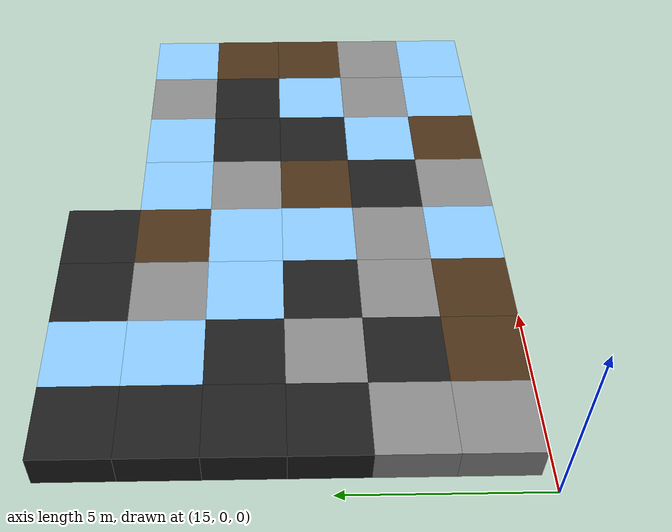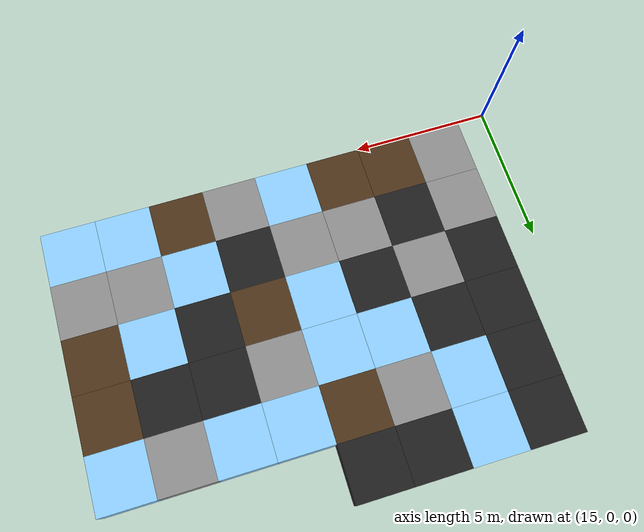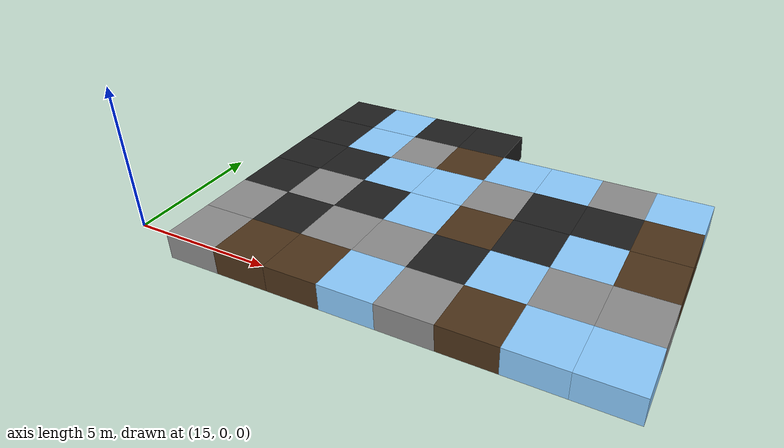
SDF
<sdf version="1.5">
 <world name="squares_example">
  <model name="tile_24_16">
   <static>true</static>
   <pose>17.000 1.000 -0.500 0 0 0</pose>
   <link name="link">
    <collision name="col">
     <geometry><box><size>2.0 2.0 1.0</size></box></geometry>
     <surface>
      <friction>
       <ode><mu>0.8</mu><mu2>0.3</mu2><fdir1>1 0 0</fdir1><slip1>0.0</slip1><slip2>0.0</slip2></ode>
       <torsional>
        <coefficient>0.03</coefficient>
        <use_patch_radius>false</use_patch_radius>
        <surface_radius>0.12</surface_radius>
        <ode><slip>0.0</slip></ode>
       </torsional>
      </friction>
      <bounce><restitution_coefficient>0.0</restitution_coefficient><threshold>0.1</threshold></bounce>
      <contact>
       <ode><kp>10000000000.0</kp><kd>10000000.0</kd><max_vel>0.01</max_vel><min_depth>0.0</min_depth></ode>
      </contact>
     </surface>
    </collision>
    <visual name="visual">
     <geometry><box><size>2.0 2.0 1.0</size></box></geometry>
     <material>
      <diffuse>0.55 0.55 0.55 1</diffuse>
      <ambient>0 0 0 0</ambient>
      <specular>0 0 0 1</specular>
      <emissive>0 0 0 1</emissive>
     </material>
    </visual>
   </link>
  </model>
  <model name="tile_25_16">
   <static>true</static>
   <pose>19.000 1.000 -0.500 0 0 0</pose>
   <link name="link">
    <collision name="col">
     <geometry><box><size>2.0 2.0 1.0</size></box></geometry>
     <surface>
      <friction>
       <ode><mu>0.6</mu><mu2>0.4</mu2><fdir1>1 0 0</fdir1><slip1>0.08</slip1><slip2>0.08</slip2></ode>
       <torsional>
        <coefficient>0.03</coefficient>
        <use_patch_radius>false</use_patch_radius>
        <surface_radius>0.12</surface_radius>
        <ode><slip>0.0</slip></ode>
       </torsional>
      </friction>
      <bounce><restitution_coefficient>0.0</restitution_coefficient><threshold>0.1</threshold></bounce>
      <contact>
       <ode><kp>1000000.0</kp><kd>10000.0</kd><max_vel>0.01</max_vel><min_depth>0.0</min_depth></ode>
      </contact>
     </surface>
    </collision>
    <visual name="visual">
     <geometry><box><size>2.0 2.0 1.0</size></box></geometry>
     <material>
      <diffuse>0.30 0.20 0.10 1</diffuse>
      <ambient>0 0 0 0</ambient>
      <specular>0 0 0 1</specular>
      <emissive>0 0 0 1</emissive>
     </material>
    </visual>
   </link>
  </model>
  <model name="tile_26_16">
   <static>true</static>
   <pose>21.000 1.000 -0.500 0 0 0</pose>
   <link name="link">
    <collision name="col">
     <geometry><box><size>2.0 2.0 1.0</size></box></geometry>
     <surface>
      <friction>
       <ode><mu>0.6</mu><mu2>0.4</mu2><fdir1>1 0 0</fdir1><slip1>0.08</slip1><slip2>0.08</slip2></ode>
       <torsional>
        <coefficient>0.03</coefficient>
        <use_patch_radius>false</use_patch_radius>
        <surface_radius>0.12</surface_radius>
        <ode><slip>0.0</slip></ode>
       </torsional>
      </friction>
      <bounce><restitution_coefficient>0.0</restitution_coefficient><threshold>0.1</threshold></bounce>
      <contact>
       <ode><kp>1000000.0</kp><kd>10000.0</kd><max_vel>0.01</max_vel><min_depth>0.0</min_depth></ode>
      </contact>
     </surface>
    </collision>
    <visual name="visual">
     <geometry><box><size>2.0 2.0 1.0</size></box></geometry>
     <material>
      <diffuse>0.30 0.20 0.10 1</diffuse>
      <ambient>0 0 0 0</ambient>
      <specular>0 0 0 1</specular>
      <emissive>0 0 0 1</emissive>
     </material>
    </visual>
   </link>
  </model>
  <model name="tile_27_16">
   <static>true</static>
   <pose>23.000 1.000 -0.500 0 0 0</pose>
   <link name="link">
    <collision name="col">
     <geometry><box><size>2.0 2.0 1.0</size></box></geometry>
     <surface>
      <friction>
       <ode><mu>0.03</mu><mu2>0.02</mu2><fdir1>1 0 0</fdir1><slip1>0.03</slip1><slip2>0.03</slip2></ode>
       <torsional>
        <coefficient>0.005</coefficient>
        <use_patch_radius>false</use_patch_radius>
        <surface_radius>0.12</surface_radius>
        <ode><slip>0.01</slip></ode>
       </torsional>
      </friction>
      <bounce><restitution_coefficient>0.0</restitution_coefficient><threshold>0.1</threshold></bounce>
      <contact>
       <ode><kp>10000000.0</kp><kd>1000.0</kd><max_vel>0.01</max_vel><min_depth>0.0</min_depth></ode>
      </contact>
     </surface>
    </collision>
    <visual name="visual">
     <geometry><box><size>2.0 2.0 1.0</size></box></geometry>
     <material>
      <diffuse>0.55 0.80 1.00 1</diffuse>
      <ambient>0 0 0 0</ambient>
      <specular>0 0 0 1</specular>
      <emissive>0 0 0 1</emissive>
     </material>
    </visual>
   </link>
  </model>
  <model name="tile_28_16">
   <static>true</static>
   <pose>25.000 1.000 -0.500 0 0 0</pose>
   <link name="link">
    <collision name="col">
     <geometry><box><size>2.0 2.0 1.0</size></box></geometry>
     <surface>
      <friction>
       <ode><mu>0.8</mu><mu2>0.3</mu2><fdir1>1 0 0</fdir1><slip1>0.0</slip1><slip2>0.0</slip2></ode>
       <torsional>
        <coefficient>0.03</coefficient>
        <use_patch_radius>false</use_patch_radius>
        <surface_radius>0.12</surface_radius>
        <ode><slip>0.0</slip></ode>
       </torsional>
      </friction>
      <bounce><restitution_coefficient>0.0</restitution_coefficient><threshold>0.1</threshold></bounce>
      <contact>
       <ode><kp>10000000000.0</kp><kd>10000000.0</kd><max_vel>0.01</max_vel><min_depth>0.0</min_depth></ode>
      </contact>
     </surface>
    </collision>
    <visual name="visual">
     <geometry><box><size>2.0 2.0 1.0</size></box></geometry>
     <material>
      <diffuse>0.55 0.55 0.55 1</diffuse>
      <ambient>0 0 0 0</ambient>
      <specular>0 0 0 1</specular>
      <emissive>0 0 0 1</emissive>
     </material>
    </visual>
   </link>
  </model>
  <model name="tile_29_16">
   <static>true</static>
   <pose>27.000 1.000 -0.500 0 0 0</pose>
   <link name="link">
    <collision name="col">
     <geometry><box><size>2.0 2.0 1.0</size></box></geometry>
     <surface>
      <friction>
       <ode><mu>0.6</mu><mu2>0.4</mu2><fdir1>1 0 0</fdir1><slip1>0.08</slip1><slip2>0.08</slip2></ode>
       <torsional>
        <coefficient>0.03</coefficient>
        <use_patch_radius>false</use_patch_radius>
        <surface_radius>0.12</surface_radius>
        <ode><slip>0.0</slip></ode>
       </torsional>
      </friction>
      <bounce><restitution_coefficient>0.0</restitution_coefficient><threshold>0.1</threshold></bounce>
      <contact>
       <ode><kp>1000000.0</kp><kd>10000.0</kd><max_vel>0.01</max_vel><min_depth>0.0</min_depth></ode>
      </contact>
     </surface>
    </collision>
    <visual name="visual">
     <geometry><box><size>2.0 2.0 1.0</size></box></geometry>
     <material>
      <diffuse>0.30 0.20 0.10 1</diffuse>
      <ambient>0 0 0 0</ambient>
      <specular>0 0 0 1</specular>
      <emissive>0 0 0 1</emissive>
     </material>
    </visual>
   </link>
  </model>
  <model name="tile_30_16">
   <static>true</static>
   <pose>29.000 1.000 -0.500 0 0 0</pose>
   <link name="link">
    <collision name="col">
     <geometry><box><size>2.0 2.0 1.0</size></box></geometry>
     <surface>
      <friction>
       <ode><mu>0.03</mu><mu2>0.02</mu2><fdir1>1 0 0</fdir1><slip1>0.03</slip1><slip2>0.03</slip2></ode>
       <torsional>
        <coefficient>0.005</coefficient>
        <use_patch_radius>false</use_patch_radius>
        <surface_radius>0.12</surface_radius>
        <ode><slip>0.01</slip></ode>
       </torsional>
      </friction>
      <bounce><restitution_coefficient>0.0</restitution_coefficient><threshold>0.1</threshold></bounce>
      <contact>
       <ode><kp>10000000.0</kp><kd>1000.0</kd><max_vel>0.01</max_vel><min_depth>0.0</min_depth></ode>
      </contact>
     </surface>
    </collision>
    <visual name="visual">
     <geometry><box><size>2.0 2.0 1.0</size></box></geometry>
     <material>
      <diffuse>0.55 0.80 1.00 1</diffuse>
      <ambient>0 0 0 0</ambient>
      <specular>0 0 0 1</specular>
      <emissive>0 0 0 1</emissive>
     </material>
    </visual>
   </link>
  </model>
  <model name="tile_31_16">
   <static>true</static>
   <pose>31.000 1.000 -0.500 0 0 0</pose>
   <link name="link">
    <collision name="col">
     <geometry><box><size>2.0 2.0 1.0</size></box></geometry>
     <surface>
      <friction>
       <ode><mu>0.03</mu><mu2>0.02</mu2><fdir1>1 0 0</fdir1><slip1>0.03</slip1><slip2>0.03</slip2></ode>
       <torsional>
        <coefficient>0.005</coefficient>
        <use_patch_radius>false</use_patch_radius>
        <surface_radius>0.12</surface_radius>
        <ode><slip>0.01</slip></ode>
       </torsional>
      </friction>
      <bounce><restitution_coefficient>0.0</restitution_coefficient><threshold>0.1</threshold></bounce>
      <contact>
       <ode><kp>10000000.0</kp><kd>1000.0</kd><max_vel>0.01</max_vel><min_depth>0.0</min_depth></ode>
      </contact>
     </surface>
    </collision>
    <visual name="visual">
     <geometry><box><size>2.0 2.0 1.0</size></box></geometry>
     <material>
      <diffuse>0.55 0.80 1.00 1</diffuse>
      <ambient>0 0 0 0</ambient>
      <specular>0 0 0 1</specular>
      <emissive>0 0 0 1</emissive>
     </material>
    </visual>
   </link>
  </model>
  <model name="tile_24_17">
   <static>true</static>
   <pose>17.000 3.000 -0.500 0 0 0</pose>
   <link name="link">
    <collision name="col">
     <geometry><box><size>2.0 2.0 1.0</size></box></geometry>
     <surface>
      <friction>
       <ode><mu>0.8</mu><mu2>0.3</mu2><fdir1>1 0 0</fdir1><slip1>0.0</slip1><slip2>0.0</slip2></ode>
       <torsional>
        <coefficient>0.03</coefficient>
        <use_patch_radius>false</use_patch_radius>
        <surface_radius>0.12</surface_radius>
        <ode><slip>0.0</slip></ode>
       </torsional>
      </friction>
      <bounce><restitution_coefficient>0.0</restitution_coefficient><threshold>0.1</threshold></bounce>
      <contact>
       <ode><kp>10000000000.0</kp><kd>10000000.0</kd><max_vel>0.01</max_vel><min_depth>0.0</min_depth></ode>
      </contact>
     </surface>
    </collision>
    <visual name="visual">
     <geometry><box><size>2.0 2.0 1.0</size></box></geometry>
     <material>
      <diffuse>0.55 0.55 0.55 1</diffuse>
      <ambient>0 0 0 0</ambient>
      <specular>0 0 0 1</specular>
      <emissive>0 0 0 1</emissive>
     </material>
    </visual>
   </link>
  </model>
  <model name="tile_25_17">
   <static>true</static>
   <pose>19.000 3.000 -0.500 0 0 0</pose>
   <link name="link">
    <collision name="col">
     <geometry><box><size>2.0 2.0 1.0</size></box></geometry>
     <surface>
      <friction>
       <ode><mu>0.4</mu><mu2>0.15</mu2><fdir1>1 0 0</fdir1><slip1>0.0</slip1><slip2>0.0</slip2></ode>
       <torsional>
        <coefficient>0.03</coefficient>
        <use_patch_radius>false</use_patch_radius>
        <surface_radius>0.12</surface_radius>
        <ode><slip>0.0</slip></ode>
       </torsional>
      </friction>
      <bounce><restitution_coefficient>0.0</restitution_coefficient><threshold>0.1</threshold></bounce>
      <contact>
       <ode><kp>1000000000.0</kp><kd>1000000.0</kd><max_vel>0.01</max_vel><min_depth>0.0</min_depth></ode>
      </contact>
     </surface>
    </collision>
    <visual name="visual">
     <geometry><box><size>2.0 2.0 1.0</size></box></geometry>
     <material>
      <diffuse>0.12 0.12 0.12 1</diffuse>
      <ambient>0 0 0 0</ambient>
      <specular>0 0 0 1</specular>
      <emissive>0 0 0 1</emissive>
     </material>
    </visual>
   </link>
  </model>
  <model name="tile_26_17">
   <static>true</static>
   <pose>21.000 3.000 -0.500 0 0 0</pose>
   <link name="link">
    <collision name="col">
     <geometry><box><size>2.0 2.0 1.0</size></box></geometry>
     <surface>
      <friction>
       <ode><mu>0.8</mu><mu2>0.3</mu2><fdir1>1 0 0</fdir1><slip1>0.0</slip1><slip2>0.0</slip2></ode>
       <torsional>
        <coefficient>0.03</coefficient>
        <use_patch_radius>false</use_patch_radius>
        <surface_radius>0.12</surface_radius>
        <ode><slip>0.0</slip></ode>
       </torsional>
      </friction>
      <bounce><restitution_coefficient>0.0</restitution_coefficient><threshold>0.1</threshold></bounce>
      <contact>
       <ode><kp>10000000000.0</kp><kd>10000000.0</kd><max_vel>0.01</max_vel><min_depth>0.0</min_depth></ode>
      </contact>
     </surface>
    </collision>
    <visual name="visual">
     <geometry><box><size>2.0 2.0 1.0</size></box></geometry>
     <material>
      <diffuse>0.55 0.55 0.55 1</diffuse>
      <ambient>0 0 0 0</ambient>
      <specular>0 0 0 1</specular>
      <emissive>0 0 0 1</emissive>
     </material>
    </visual>
   </link>
  </model>
  <model name="tile_27_17">
   <static>true</static>
   <pose>23.000 3.000 -0.500 0 0 0</pose>
   <link name="link">
    <collision name="col">
     <geometry><box><size>2.0 2.0 1.0</size></box></geometry>
     <surface>
      <friction>
       <ode><mu>0.8</mu><mu2>0.3</mu2><fdir1>1 0 0</fdir1><slip1>0.0</slip1><slip2>0.0</slip2></ode>
       <torsional>
        <coefficient>0.03</coefficient>
        <use_patch_radius>false</use_patch_radius>
        <surface_radius>0.12</surface_radius>
        <ode><slip>0.0</slip></ode>
       </torsional>
      </friction>
      <bounce><restitution_coefficient>0.0</restitution_coefficient><threshold>0.1</threshold></bounce>
      <contact>
       <ode><kp>10000000000.0</kp><kd>10000000.0</kd><max_vel>0.01</max_vel><min_depth>0.0</min_depth></ode>
      </contact>
     </surface>
    </collision>
    <visual name="visual">
     <geometry><box><size>2.0 2.0 1.0</size></box></geometry>
     <material>
      <diffuse>0.55 0.55 0.55 1</diffuse>
      <ambient>0 0 0 0</ambient>
      <specular>0 0 0 1</specular>
      <emissive>0 0 0 1</emissive>
     </material>
    </visual>
   </link>
  </model>
  <model name="tile_28_17">
   <static>true</static>
   <pose>25.000 3.000 -0.500 0 0 0</pose>
   <link name="link">
    <collision name="col">
     <geometry><box><size>2.0 2.0 1.0</size></box></geometry>
     <surface>
      <friction>
       <ode><mu>0.4</mu><mu2>0.15</mu2><fdir1>1 0 0</fdir1><slip1>0.0</slip1><slip2>0.0</slip2></ode>
       <torsional>
        <coefficient>0.03</coefficient>
        <use_patch_radius>false</use_patch_radius>
        <surface_radius>0.12</surface_radius>
        <ode><slip>0.0</slip></ode>
       </torsional>
      </friction>
      <bounce><restitution_coefficient>0.0</restitution_coefficient><threshold>0.1</threshold></bounce>
      <contact>
       <ode><kp>1000000000.0</kp><kd>1000000.0</kd><max_vel>0.01</max_vel><min_depth>0.0</min_depth></ode>
      </contact>
     </surface>
    </collision>
    <visual name="visual">
     <geometry><box><size>2.0 2.0 1.0</size></box></geometry>
     <material>
      <diffuse>0.12 0.12 0.12 1</diffuse>
      <ambient>0 0 0 0</ambient>
      <specular>0 0 0 1</specular>
      <emissive>0 0 0 1</emissive>
     </material>
    </visual>
   </link>
  </model>
  <model name="tile_29_17">
   <static>true</static>
   <pose>27.000 3.000 -0.500 0 0 0</pose>
   <link name="link">
    <collision name="col">
     <geometry><box><size>2.0 2.0 1.0</size></box></geometry>
     <surface>
      <friction>
       <ode><mu>0.03</mu><mu2>0.02</mu2><fdir1>1 0 0</fdir1><slip1>0.03</slip1><slip2>0.03</slip2></ode>
       <torsional>
        <coefficient>0.005</coefficient>
        <use_patch_radius>false</use_patch_radius>
        <surface_radius>0.12</surface_radius>
        <ode><slip>0.01</slip></ode>
       </torsional>
      </friction>
      <bounce><restitution_coefficient>0.0</restitution_coefficient><threshold>0.1</threshold></bounce>
      <contact>
       <ode><kp>10000000.0</kp><kd>1000.0</kd><max_vel>0.01</max_vel><min_depth>0.0</min_depth></ode>
      </contact>
     </surface>
    </collision>
    <visual name="visual">
     <geometry><box><size>2.0 2.0 1.0</size></box></geometry>
     <material>
      <diffuse>0.55 0.80 1.00 1</diffuse>
      <ambient>0 0 0 0</ambient>
      <specular>0 0 0 1</specular>
      <emissive>0 0 0 1</emissive>
     </material>
    </visual>
   </link>
  </model>
  <model name="tile_30_17">
   <static>true</static>
   <pose>29.000 3.000 -0.500 0 0 0</pose>
   <link name="link">
    <collision name="col">
     <geometry><box><size>2.0 2.0 1.0</size></box></geometry>
     <surface>
      <friction>
       <ode><mu>0.8</mu><mu2>0.3</mu2><fdir1>1 0 0</fdir1><slip1>0.0</slip1><slip2>0.0</slip2></ode>
       <torsional>
        <coefficient>0.03</coefficient>
        <use_patch_radius>false</use_patch_radius>
        <surface_radius>0.12</surface_radius>
        <ode><slip>0.0</slip></ode>
       </torsional>
      </friction>
      <bounce><restitution_coefficient>0.0</restitution_coefficient><threshold>0.1</threshold></bounce>
      <contact>
       <ode><kp>10000000000.0</kp><kd>10000000.0</kd><max_vel>0.01</max_vel><min_depth>0.0</min_depth></ode>
      </contact>
     </surface>
    </collision>
    <visual name="visual">
     <geometry><box><size>2.0 2.0 1.0</size></box></geometry>
     <material>
      <diffuse>0.55 0.55 0.55 1</diffuse>
      <ambient>0 0 0 0</ambient>
      <specular>0 0 0 1</specular>
      <emissive>0 0 0 1</emissive>
     </material>
    </visual>
   </link>
  </model>
  <model name="tile_31_17">
   <static>true</static>
   <pose>31.000 3.000 -0.500 0 0 0</pose>
   <link name="link">
    <collision name="col">
     <geometry><box><size>2.0 2.0 1.0</size></box></geometry>
     <surface>
      <friction>
       <ode><mu>0.8</mu><mu2>0.3</mu2><fdir1>1 0 0</fdir1><slip1>0.0</slip1><slip2>0.0</slip2></ode>
       <torsional>
        <coefficient>0.03</coefficient>
        <use_patch_radius>false</use_patch_radius>
        <surface_radius>0.12</surface_radius>
        <ode><slip>0.0</slip></ode>
       </torsional>
      </friction>
      <bounce><restitution_coefficient>0.0</restitution_coefficient><threshold>0.1</threshold></bounce>
      <contact>
       <ode><kp>10000000000.0</kp><kd>10000000.0</kd><max_vel>0.01</max_vel><min_depth>0.0</min_depth></ode>
      </contact>
     </surface>
    </collision>
    <visual name="visual">
     <geometry><box><size>2.0 2.0 1.0</size></box></geometry>
     <material>
      <diffuse>0.55 0.55 0.55 1</diffuse>
      <ambient>0 0 0 0</ambient>
      <specular>0 0 0 1</specular>
      <emissive>0 0 0 1</emissive>
     </material>
    </visual>
   </link>
  </model>
  <model name="tile_24_18">
   <static>true</static>
   <pose>17.000 5.000 -0.500 0 0 0</pose>
   <link name="link">
    <collision name="col">
     <geometry><box><size>2.0 2.0 1.0</size></box></geometry>
     <surface>
      <friction>
       <ode><mu>0.4</mu><mu2>0.15</mu2><fdir1>1 0 0</fdir1><slip1>0.0</slip1><slip2>0.0</slip2></ode>
       <torsional>
        <coefficient>0.03</coefficient>
        <use_patch_radius>false</use_patch_radius>
        <surface_radius>0.12</surface_radius>
        <ode><slip>0.0</slip></ode>
       </torsional>
      </friction>
      <bounce><restitution_coefficient>0.0</restitution_coefficient><threshold>0.1</threshold></bounce>
      <contact>
       <ode><kp>1000000000.0</kp><kd>1000000.0</kd><max_vel>0.01</max_vel><min_depth>0.0</min_depth></ode>
      </contact>
     </surface>
    </collision>
    <visual name="visual">
     <geometry><box><size>2.0 2.0 1.0</size></box></geometry>
     <material>
      <diffuse>0.12 0.12 0.12 1</diffuse>
      <ambient>0 0 0 0</ambient>
      <specular>0 0 0 1</specular>
      <emissive>0 0 0 1</emissive>
     </material>
    </visual>
   </link>
  </model>
  <model name="tile_25_18">
   <static>true</static>
   <pose>19.000 5.000 -0.500 0 0 0</pose>
   <link name="link">
    <collision name="col">
     <geometry><box><size>2.0 2.0 1.0</size></box></geometry>
     <surface>
      <friction>
       <ode><mu>0.8</mu><mu2>0.3</mu2><fdir1>1 0 0</fdir1><slip1>0.0</slip1><slip2>0.0</slip2></ode>
       <torsional>
        <coefficient>0.03</coefficient>
        <use_patch_radius>false</use_patch_radius>
        <surface_radius>0.12</surface_radius>
        <ode><slip>0.0</slip></ode>
       </torsional>
      </friction>
      <bounce><restitution_coefficient>0.0</restitution_coefficient><threshold>0.1</threshold></bounce>
      <contact>
       <ode><kp>10000000000.0</kp><kd>10000000.0</kd><max_vel>0.01</max_vel><min_depth>0.0</min_depth></ode>
      </contact>
     </surface>
    </collision>
    <visual name="visual">
     <geometry><box><size>2.0 2.0 1.0</size></box></geometry>
     <material>
      <diffuse>0.55 0.55 0.55 1</diffuse>
      <ambient>0 0 0 0</ambient>
      <specular>0 0 0 1</specular>
      <emissive>0 0 0 1</emissive>
     </material>
    </visual>
   </link>
  </model>
  <model name="tile_26_18">
   <static>true</static>
   <pose>21.000 5.000 -0.500 0 0 0</pose>
   <link name="link">
    <collision name="col">
     <geometry><box><size>2.0 2.0 1.0</size></box></geometry>
     <surface>
      <friction>
       <ode><mu>0.4</mu><mu2>0.15</mu2><fdir1>1 0 0</fdir1><slip1>0.0</slip1><slip2>0.0</slip2></ode>
       <torsional>
        <coefficient>0.03</coefficient>
        <use_patch_radius>false</use_patch_radius>
        <surface_radius>0.12</surface_radius>
        <ode><slip>0.0</slip></ode>
       </torsional>
      </friction>
      <bounce><restitution_coefficient>0.0</restitution_coefficient><threshold>0.1</threshold></bounce>
      <contact>
       <ode><kp>1000000000.0</kp><kd>1000000.0</kd><max_vel>0.01</max_vel><min_depth>0.0</min_depth></ode>
      </contact>
     </surface>
    </collision>
    <visual name="visual">
     <geometry><box><size>2.0 2.0 1.0</size></box></geometry>
     <material>
      <diffuse>0.12 0.12 0.12 1</diffuse>
      <ambient>0 0 0 0</ambient>
      <specular>0 0 0 1</specular>
      <emissive>0 0 0 1</emissive>
     </material>
    </visual>
   </link>
  </model>
  <model name="tile_27_18">
   <static>true</static>
   <pose>23.000 5.000 -0.500 0 0 0</pose>
   <link name="link">
    <collision name="col">
     <geometry><box><size>2.0 2.0 1.0</size></box></geometry>
     <surface>
      <friction>
       <ode><mu>0.03</mu><mu2>0.02</mu2><fdir1>1 0 0</fdir1><slip1>0.03</slip1><slip2>0.03</slip2></ode>
       <torsional>
        <coefficient>0.005</coefficient>
        <use_patch_radius>false</use_patch_radius>
        <surface_radius>0.12</surface_radius>
        <ode><slip>0.01</slip></ode>
       </torsional>
      </friction>
      <bounce><restitution_coefficient>0.0</restitution_coefficient><threshold>0.1</threshold></bounce>
      <contact>
       <ode><kp>10000000.0</kp><kd>1000.0</kd><max_vel>0.01</max_vel><min_depth>0.0</min_depth></ode>
      </contact>
     </surface>
    </collision>
    <visual name="visual">
     <geometry><box><size>2.0 2.0 1.0</size></box></geometry>
     <material>
      <diffuse>0.55 0.80 1.00 1</diffuse>
      <ambient>0 0 0 0</ambient>
      <specular>0 0 0 1</specular>
      <emissive>0 0 0 1</emissive>
     </material>
    </visual>
   </link>
  </model>
  <model name="tile_28_18">
   <static>true</static>
   <pose>25.000 5.000 -0.500 0 0 0</pose>
   <link name="link">
    <collision name="col">
     <geometry><box><size>2.0 2.0 1.0</size></box></geometry>
     <surface>
      <friction>
       <ode><mu>0.6</mu><mu2>0.4</mu2><fdir1>1 0 0</fdir1><slip1>0.08</slip1><slip2>0.08</slip2></ode>
       <torsional>
        <coefficient>0.03</coefficient>
        <use_patch_radius>false</use_patch_radius>
        <surface_radius>0.12</surface_radius>
        <ode><slip>0.0</slip></ode>
       </torsional>
      </friction>
      <bounce><restitution_coefficient>0.0</restitution_coefficient><threshold>0.1</threshold></bounce>
      <contact>
       <ode><kp>1000000.0</kp><kd>10000.0</kd><max_vel>0.01</max_vel><min_depth>0.0</min_depth></ode>
      </contact>
     </surface>
    </collision>
    <visual name="visual">
     <geometry><box><size>2.0 2.0 1.0</size></box></geometry>
     <material>
      <diffuse>0.30 0.20 0.10 1</diffuse>
      <ambient>0 0 0 0</ambient>
      <specular>0 0 0 1</specular>
      <emissive>0 0 0 1</emissive>
     </material>
    </visual>
   </link>
  </model>
  <model name="tile_29_18">
   <static>true</static>
   <pose>27.000 5.000 -0.500 0 0 0</pose>
   <link name="link">
    <collision name="col">
     <geometry><box><size>2.0 2.0 1.0</size></box></geometry>
     <surface>
      <friction>
       <ode><mu>0.4</mu><mu2>0.15</mu2><fdir1>1 0 0</fdir1><slip1>0.0</slip1><slip2>0.0</slip2></ode>
       <torsional>
        <coefficient>0.03</coefficient>
        <use_patch_radius>false</use_patch_radius>
        <surface_radius>0.12</surface_radius>
        <ode><slip>0.0</slip></ode>
       </torsional>
      </friction>
      <bounce><restitution_coefficient>0.0</restitution_coefficient><threshold>0.1</threshold></bounce>
      <contact>
       <ode><kp>1000000000.0</kp><kd>1000000.0</kd><max_vel>0.01</max_vel><min_depth>0.0</min_depth></ode>
      </contact>
     </surface>
    </collision>
    <visual name="visual">
     <geometry><box><size>2.0 2.0 1.0</size></box></geometry>
     <material>
      <diffuse>0.12 0.12 0.12 1</diffuse>
      <ambient>0 0 0 0</ambient>
      <specular>0 0 0 1</specular>
      <emissive>0 0 0 1</emissive>
     </material>
    </visual>
   </link>
  </model>
  <model name="tile_30_18">
   <static>true</static>
   <pose>29.000 5.000 -0.500 0 0 0</pose>
   <link name="link">
    <collision name="col">
     <geometry><box><size>2.0 2.0 1.0</size></box></geometry>
     <surface>
      <friction>
       <ode><mu>0.03</mu><mu2>0.02</mu2><fdir1>1 0 0</fdir1><slip1>0.03</slip1><slip2>0.03</slip2></ode>
       <torsional>
        <coefficient>0.005</coefficient>
        <use_patch_radius>false</use_patch_radius>
        <surface_radius>0.12</surface_radius>
        <ode><slip>0.01</slip></ode>
       </torsional>
      </friction>
      <bounce><restitution_coefficient>0.0</restitution_coefficient><threshold>0.1</threshold></bounce>
      <contact>
       <ode><kp>10000000.0</kp><kd>1000.0</kd><max_vel>0.01</max_vel><min_depth>0.0</min_depth></ode>
      </contact>
     </surface>
    </collision>
    <visual name="visual">
     <geometry><box><size>2.0 2.0 1.0</size></box></geometry>
     <material>
      <diffuse>0.55 0.80 1.00 1</diffuse>
      <ambient>0 0 0 0</ambient>
      <specular>0 0 0 1</specular>
      <emissive>0 0 0 1</emissive>
     </material>
    </visual>
   </link>
  </model>
  <model name="tile_31_18">
   <static>true</static>
   <pose>31.000 5.000 -0.500 0 0 0</pose>
   <link name="link">
    <collision name="col">
     <geometry><box><size>2.0 2.0 1.0</size></box></geometry>
     <surface>
      <friction>
       <ode><mu>0.6</mu><mu2>0.4</mu2><fdir1>1 0 0</fdir1><slip1>0.08</slip1><slip2>0.08</slip2></ode>
       <torsional>
        <coefficient>0.03</coefficient>
        <use_patch_radius>false</use_patch_radius>
        <surface_radius>0.12</surface_radius>
        <ode><slip>0.0</slip></ode>
       </torsional>
      </friction>
      <bounce><restitution_coefficient>0.0</restitution_coefficient><threshold>0.1</threshold></bounce>
      <contact>
       <ode><kp>1000000.0</kp><kd>10000.0</kd><max_vel>0.01</max_vel><min_depth>0.0</min_depth></ode>
      </contact>
     </surface>
    </collision>
    <visual name="visual">
     <geometry><box><size>2.0 2.0 1.0</size></box></geometry>
     <material>
      <diffuse>0.30 0.20 0.10 1</diffuse>
      <ambient>0 0 0 0</ambient>
      <specular>0 0 0 1</specular>
      <emissive>0 0 0 1</emissive>
     </material>
    </visual>
   </link>
  </model>
  <model name="tile_24_19">
   <static>true</static>
   <pose>17.000 7.000 -0.500 0 0 0</pose>
   <link name="link">
    <collision name="col">
     <geometry><box><size>2.0 2.0 1.0</size></box></geometry>
     <surface>
      <friction>
       <ode><mu>0.4</mu><mu2>0.15</mu2><fdir1>1 0 0</fdir1><slip1>0.0</slip1><slip2>0.0</slip2></ode>
       <torsional>
        <coefficient>0.03</coefficient>
        <use_patch_radius>false</use_patch_radius>
        <surface_radius>0.12</surface_radius>
        <ode><slip>0.0</slip></ode>
       </torsional>
      </friction>
      <bounce><restitution_coefficient>0.0</restitution_coefficient><threshold>0.1</threshold></bounce>
      <contact>
       <ode><kp>1000000000.0</kp><kd>1000000.0</kd><max_vel>0.01</max_vel><min_depth>0.0</min_depth></ode>
      </contact>
     </surface>
    </collision>
    <visual name="visual">
     <geometry><box><size>2.0 2.0 1.0</size></box></geometry>
     <material>
      <diffuse>0.12 0.12 0.12 1</diffuse>
      <ambient>0 0 0 0</ambient>
      <specular>0 0 0 1</specular>
      <emissive>0 0 0 1</emissive>
     </material>
    </visual>
   </link>
  </model>
  <model name="tile_25_19">
   <static>true</static>
   <pose>19.000 7.000 -0.500 0 0 0</pose>
   <link name="link">
    <collision name="col">
     <geometry><box><size>2.0 2.0 1.0</size></box></geometry>
     <surface>
      <friction>
       <ode><mu>0.4</mu><mu2>0.15</mu2><fdir1>1 0 0</fdir1><slip1>0.0</slip1><slip2>0.0</slip2></ode>
       <torsional>
        <coefficient>0.03</coefficient>
        <use_patch_radius>false</use_patch_radius>
        <surface_radius>0.12</surface_radius>
        <ode><slip>0.0</slip></ode>
       </torsional>
      </friction>
      <bounce><restitution_coefficient>0.0</restitution_coefficient><threshold>0.1</threshold></bounce>
      <contact>
       <ode><kp>1000000000.0</kp><kd>1000000.0</kd><max_vel>0.01</max_vel><min_depth>0.0</min_depth></ode>
      </contact>
     </surface>
    </collision>
    <visual name="visual">
     <geometry><box><size>2.0 2.0 1.0</size></box></geometry>
     <material>
      <diffuse>0.12 0.12 0.12 1</diffuse>
      <ambient>0 0 0 0</ambient>
      <specular>0 0 0 1</specular>
      <emissive>0 0 0 1</emissive>
     </material>
    </visual>
   </link>
  </model>
  <model name="tile_26_19">
   <static>true</static>
   <pose>21.000 7.000 -0.500 0 0 0</pose>
   <link name="link">
    <collision name="col">
     <geometry><box><size>2.0 2.0 1.0</size></box></geometry>
     <surface>
      <friction>
       <ode><mu>0.03</mu><mu2>0.02</mu2><fdir1>1 0 0</fdir1><slip1>0.03</slip1><slip2>0.03</slip2></ode>
       <torsional>
        <coefficient>0.005</coefficient>
        <use_patch_radius>false</use_patch_radius>
        <surface_radius>0.12</surface_radius>
        <ode><slip>0.01</slip></ode>
       </torsional>
      </friction>
      <bounce><restitution_coefficient>0.0</restitution_coefficient><threshold>0.1</threshold></bounce>
      <contact>
       <ode><kp>10000000.0</kp><kd>1000.0</kd><max_vel>0.01</max_vel><min_depth>0.0</min_depth></ode>
      </contact>
     </surface>
    </collision>
    <visual name="visual">
     <geometry><box><size>2.0 2.0 1.0</size></box></geometry>
     <material>
      <diffuse>0.55 0.80 1.00 1</diffuse>
      <ambient>0 0 0 0</ambient>
      <specular>0 0 0 1</specular>
      <emissive>0 0 0 1</emissive>
     </material>
    </visual>
   </link>
  </model>
  <model name="tile_27_19">
   <static>true</static>
   <pose>23.000 7.000 -0.500 0 0 0</pose>
   <link name="link">
    <collision name="col">
     <geometry><box><size>2.0 2.0 1.0</size></box></geometry>
     <surface>
      <friction>
       <ode><mu>0.03</mu><mu2>0.02</mu2><fdir1>1 0 0</fdir1><slip1>0.03</slip1><slip2>0.03</slip2></ode>
       <torsional>
        <coefficient>0.005</coefficient>
        <use_patch_radius>false</use_patch_radius>
        <surface_radius>0.12</surface_radius>
        <ode><slip>0.01</slip></ode>
       </torsional>
      </friction>
      <bounce><restitution_coefficient>0.0</restitution_coefficient><threshold>0.1</threshold></bounce>
      <contact>
       <ode><kp>10000000.0</kp><kd>1000.0</kd><max_vel>0.01</max_vel><min_depth>0.0</min_depth></ode>
      </contact>
     </surface>
    </collision>
    <visual name="visual">
     <geometry><box><size>2.0 2.0 1.0</size></box></geometry>
     <material>
      <diffuse>0.55 0.80 1.00 1</diffuse>
      <ambient>0 0 0 0</ambient>
      <specular>0 0 0 1</specular>
      <emissive>0 0 0 1</emissive>
     </material>
    </visual>
   </link>
  </model>
  <model name="tile_28_19">
   <static>true</static>
   <pose>25.000 7.000 -0.500 0 0 0</pose>
   <link name="link">
    <collision name="col">
     <geometry><box><size>2.0 2.0 1.0</size></box></geometry>
     <surface>
      <friction>
       <ode><mu>0.8</mu><mu2>0.3</mu2><fdir1>1 0 0</fdir1><slip1>0.0</slip1><slip2>0.0</slip2></ode>
       <torsional>
        <coefficient>0.03</coefficient>
        <use_patch_radius>false</use_patch_radius>
        <surface_radius>0.12</surface_radius>
        <ode><slip>0.0</slip></ode>
       </torsional>
      </friction>
      <bounce><restitution_coefficient>0.0</restitution_coefficient><threshold>0.1</threshold></bounce>
      <contact>
       <ode><kp>10000000000.0</kp><kd>10000000.0</kd><max_vel>0.01</max_vel><min_depth>0.0</min_depth></ode>
      </contact>
     </surface>
    </collision>
    <visual name="visual">
     <geometry><box><size>2.0 2.0 1.0</size></box></geometry>
     <material>
      <diffuse>0.55 0.55 0.55 1</diffuse>
      <ambient>0 0 0 0</ambient>
      <specular>0 0 0 1</specular>
      <emissive>0 0 0 1</emissive>
     </material>
    </visual>
   </link>
  </model>
  <model name="tile_29_19">
   <static>true</static>
   <pose>27.000 7.000 -0.500 0 0 0</pose>
   <link name="link">
    <collision name="col">
     <geometry><box><size>2.0 2.0 1.0</size></box></geometry>
     <surface>
      <friction>
       <ode><mu>0.4</mu><mu2>0.15</mu2><fdir1>1 0 0</fdir1><slip1>0.0</slip1><slip2>0.0</slip2></ode>
       <torsional>
        <coefficient>0.03</coefficient>
        <use_patch_radius>false</use_patch_radius>
        <surface_radius>0.12</surface_radius>
        <ode><slip>0.0</slip></ode>
       </torsional>
      </friction>
      <bounce><restitution_coefficient>0.0</restitution_coefficient><threshold>0.1</threshold></bounce>
      <contact>
       <ode><kp>1000000000.0</kp><kd>1000000.0</kd><max_vel>0.01</max_vel><min_depth>0.0</min_depth></ode>
      </contact>
     </surface>
    </collision>
    <visual name="visual">
     <geometry><box><size>2.0 2.0 1.0</size></box></geometry>
     <material>
      <diffuse>0.12 0.12 0.12 1</diffuse>
      <ambient>0 0 0 0</ambient>
      <specular>0 0 0 1</specular>
      <emissive>0 0 0 1</emissive>
     </material>
    </visual>
   </link>
  </model>
  <model name="tile_30_19">
   <static>true</static>
   <pose>29.000 7.000 -0.500 0 0 0</pose>
   <link name="link">
    <collision name="col">
     <geometry><box><size>2.0 2.0 1.0</size></box></geometry>
     <surface>
      <friction>
       <ode><mu>0.4</mu><mu2>0.15</mu2><fdir1>1 0 0</fdir1><slip1>0.0</slip1><slip2>0.0</slip2></ode>
       <torsional>
        <coefficient>0.03</coefficient>
        <use_patch_radius>false</use_patch_radius>
        <surface_radius>0.12</surface_radius>
        <ode><slip>0.0</slip></ode>
       </torsional>
      </friction>
      <bounce><restitution_coefficient>0.0</restitution_coefficient><threshold>0.1</threshold></bounce>
      <contact>
       <ode><kp>1000000000.0</kp><kd>1000000.0</kd><max_vel>0.01</max_vel><min_depth>0.0</min_depth></ode>
      </contact>
     </surface>
    </collision>
    <visual name="visual">
     <geometry><box><size>2.0 2.0 1.0</size></box></geometry>
     <material>
      <diffuse>0.12 0.12 0.12 1</diffuse>
      <ambient>0 0 0 0</ambient>
      <specular>0 0 0 1</specular>
      <emissive>0 0 0 1</emissive>
     </material>
    </visual>
   </link>
  </model>
  <model name="tile_31_19">
   <static>true</static>
   <pose>31.000 7.000 -0.500 0 0 0</pose>
   <link name="link">
    <collision name="col">
     <geometry><box><size>2.0 2.0 1.0</size></box></geometry>
     <surface>
      <friction>
       <ode><mu>0.6</mu><mu2>0.4</mu2><fdir1>1 0 0</fdir1><slip1>0.08</slip1><slip2>0.08</slip2></ode>
       <torsional>
        <coefficient>0.03</coefficient>
        <use_patch_radius>false</use_patch_radius>
        <surface_radius>0.12</surface_radius>
        <ode><slip>0.0</slip></ode>
       </torsional>
      </friction>
      <bounce><restitution_coefficient>0.0</restitution_coefficient><threshold>0.1</threshold></bounce>
      <contact>
       <ode><kp>1000000.0</kp><kd>10000.0</kd><max_vel>0.01</max_vel><min_depth>0.0</min_depth></ode>
      </contact>
     </surface>
    </collision>
    <visual name="visual">
     <geometry><box><size>2.0 2.0 1.0</size></box></geometry>
     <material>
      <diffuse>0.30 0.20 0.10 1</diffuse>
      <ambient>0 0 0 0</ambient>
      <specular>0 0 0 1</specular>
      <emissive>0 0 0 1</emissive>
     </material>
    </visual>
   </link>
  </model>
  <model name="tile_24_20">
   <static>true</static>
   <pose>17.000 9.000 -0.500 0 0 0</pose>
   <link name="link">
    <collision name="col">
     <geometry><box><size>2.0 2.0 1.0</size></box></geometry>
     <surface>
      <friction>
       <ode><mu>0.4</mu><mu2>0.15</mu2><fdir1>1 0 0</fdir1><slip1>0.0</slip1><slip2>0.0</slip2></ode>
       <torsional>
        <coefficient>0.03</coefficient>
        <use_patch_radius>false</use_patch_radius>
        <surface_radius>0.12</surface_radius>
        <ode><slip>0.0</slip></ode>
       </torsional>
      </friction>
      <bounce><restitution_coefficient>0.0</restitution_coefficient><threshold>0.1</threshold></bounce>
      <contact>
       <ode><kp>1000000000.0</kp><kd>1000000.0</kd><max_vel>0.01</max_vel><min_depth>0.0</min_depth></ode>
      </contact>
     </surface>
    </collision>
    <visual name="visual">
     <geometry><box><size>2.0 2.0 1.0</size></box></geometry>
     <material>
      <diffuse>0.12 0.12 0.12 1</diffuse>
      <ambient>0 0 0 0</ambient>
      <specular>0 0 0 1</specular>
      <emissive>0 0 0 1</emissive>
     </material>
    </visual>
   </link>
  </model>
  <model name="tile_25_20">
   <static>true</static>
   <pose>19.000 9.000 -0.500 0 0 0</pose>
   <link name="link">
    <collision name="col">
     <geometry><box><size>2.0 2.0 1.0</size></box></geometry>
     <surface>
      <friction>
       <ode><mu>0.03</mu><mu2>0.02</mu2><fdir1>1 0 0</fdir1><slip1>0.03</slip1><slip2>0.03</slip2></ode>
       <torsional>
        <coefficient>0.005</coefficient>
        <use_patch_radius>false</use_patch_radius>
        <surface_radius>0.12</surface_radius>
        <ode><slip>0.01</slip></ode>
       </torsional>
      </friction>
      <bounce><restitution_coefficient>0.0</restitution_coefficient><threshold>0.1</threshold></bounce>
      <contact>
       <ode><kp>10000000.0</kp><kd>1000.0</kd><max_vel>0.01</max_vel><min_depth>0.0</min_depth></ode>
      </contact>
     </surface>
    </collision>
    <visual name="visual">
     <geometry><box><size>2.0 2.0 1.0</size></box></geometry>
     <material>
      <diffuse>0.55 0.80 1.00 1</diffuse>
      <ambient>0 0 0 0</ambient>
      <specular>0 0 0 1</specular>
      <emissive>0 0 0 1</emissive>
     </material>
    </visual>
   </link>
  </model>
  <model name="tile_26_20">
   <static>true</static>
   <pose>21.000 9.000 -0.500 0 0 0</pose>
   <link name="link">
    <collision name="col">
     <geometry><box><size>2.0 2.0 1.0</size></box></geometry>
     <surface>
      <friction>
       <ode><mu>0.8</mu><mu2>0.3</mu2><fdir1>1 0 0</fdir1><slip1>0.0</slip1><slip2>0.0</slip2></ode>
       <torsional>
        <coefficient>0.03</coefficient>
        <use_patch_radius>false</use_patch_radius>
        <surface_radius>0.12</surface_radius>
        <ode><slip>0.0</slip></ode>
       </torsional>
      </friction>
      <bounce><restitution_coefficient>0.0</restitution_coefficient><threshold>0.1</threshold></bounce>
      <contact>
       <ode><kp>10000000000.0</kp><kd>10000000.0</kd><max_vel>0.01</max_vel><min_depth>0.0</min_depth></ode>
      </contact>
     </surface>
    </collision>
    <visual name="visual">
     <geometry><box><size>2.0 2.0 1.0</size></box></geometry>
     <material>
      <diffuse>0.55 0.55 0.55 1</diffuse>
      <ambient>0 0 0 0</ambient>
      <specular>0 0 0 1</specular>
      <emissive>0 0 0 1</emissive>
     </material>
    </visual>
   </link>
  </model>
  <model name="tile_27_20">
   <static>true</static>
   <pose>23.000 9.000 -0.500 0 0 0</pose>
   <link name="link">
    <collision name="col">
     <geometry><box><size>2.0 2.0 1.0</size></box></geometry>
     <surface>
      <friction>
       <ode><mu>0.6</mu><mu2>0.4</mu2><fdir1>1 0 0</fdir1><slip1>0.08</slip1><slip2>0.08</slip2></ode>
       <torsional>
        <coefficient>0.03</coefficient>
        <use_patch_radius>false</use_patch_radius>
        <surface_radius>0.12</surface_radius>
        <ode><slip>0.0</slip></ode>
       </torsional>
      </friction>
      <bounce><restitution_coefficient>0.0</restitution_coefficient><threshold>0.1</threshold></bounce>
      <contact>
       <ode><kp>1000000.0</kp><kd>10000.0</kd><max_vel>0.01</max_vel><min_depth>0.0</min_depth></ode>
      </contact>
     </surface>
    </collision>
    <visual name="visual">
     <geometry><box><size>2.0 2.0 1.0</size></box></geometry>
     <material>
      <diffuse>0.30 0.20 0.10 1</diffuse>
      <ambient>0 0 0 0</ambient>
      <specular>0 0 0 1</specular>
      <emissive>0 0 0 1</emissive>
     </material>
    </visual>
   </link>
  </model>
  <model name="tile_28_20">
   <static>true</static>
   <pose>25.000 9.000 -0.500 0 0 0</pose>
   <link name="link">
    <collision name="col">
     <geometry><box><size>2.0 2.0 1.0</size></box></geometry>
     <surface>
      <friction>
       <ode><mu>0.03</mu><mu2>0.02</mu2><fdir1>1 0 0</fdir1><slip1>0.03</slip1><slip2>0.03</slip2></ode>
       <torsional>
        <coefficient>0.005</coefficient>
        <use_patch_radius>false</use_patch_radius>
        <surface_radius>0.12</surface_radius>
        <ode><slip>0.01</slip></ode>
       </torsional>
      </friction>
      <bounce><restitution_coefficient>0.0</restitution_coefficient><threshold>0.1</threshold></bounce>
      <contact>
       <ode><kp>10000000.0</kp><kd>1000.0</kd><max_vel>0.01</max_vel><min_depth>0.0</min_depth></ode>
      </contact>
     </surface>
    </collision>
    <visual name="visual">
     <geometry><box><size>2.0 2.0 1.0</size></box></geometry>
     <material>
      <diffuse>0.55 0.80 1.00 1</diffuse>
      <ambient>0 0 0 0</ambient>
      <specular>0 0 0 1</specular>
      <emissive>0 0 0 1</emissive>
     </material>
    </visual>
   </link>
  </model>
  <model name="tile_29_20">
   <static>true</static>
   <pose>27.000 9.000 -0.500 0 0 0</pose>
   <link name="link">
    <collision name="col">
     <geometry><box><size>2.0 2.0 1.0</size></box></geometry>
     <surface>
      <friction>
       <ode><mu>0.03</mu><mu2>0.02</mu2><fdir1>1 0 0</fdir1><slip1>0.03</slip1><slip2>0.03</slip2></ode>
       <torsional>
        <coefficient>0.005</coefficient>
        <use_patch_radius>false</use_patch_radius>
        <surface_radius>0.12</surface_radius>
        <ode><slip>0.01</slip></ode>
       </torsional>
      </friction>
      <bounce><restitution_coefficient>0.0</restitution_coefficient><threshold>0.1</threshold></bounce>
      <contact>
       <ode><kp>10000000.0</kp><kd>1000.0</kd><max_vel>0.01</max_vel><min_depth>0.0</min_depth></ode>
      </contact>
     </surface>
    </collision>
    <visual name="visual">
     <geometry><box><size>2.0 2.0 1.0</size></box></geometry>
     <material>
      <diffuse>0.55 0.80 1.00 1</diffuse>
      <ambient>0 0 0 0</ambient>
      <specular>0 0 0 1</specular>
      <emissive>0 0 0 1</emissive>
     </material>
    </visual>
   </link>
  </model>
  <model name="tile_30_20">
   <static>true</static>
   <pose>29.000 9.000 -0.500 0 0 0</pose>
   <link name="link">
    <collision name="col">
     <geometry><box><size>2.0 2.0 1.0</size></box></geometry>
     <surface>
      <friction>
       <ode><mu>0.8</mu><mu2>0.3</mu2><fdir1>1 0 0</fdir1><slip1>0.0</slip1><slip2>0.0</slip2></ode>
       <torsional>
        <coefficient>0.03</coefficient>
        <use_patch_radius>false</use_patch_radius>
        <surface_radius>0.12</surface_radius>
        <ode><slip>0.0</slip></ode>
       </torsional>
      </friction>
      <bounce><restitution_coefficient>0.0</restitution_coefficient><threshold>0.1</threshold></bounce>
      <contact>
       <ode><kp>10000000000.0</kp><kd>10000000.0</kd><max_vel>0.01</max_vel><min_depth>0.0</min_depth></ode>
      </contact>
     </surface>
    </collision>
    <visual name="visual">
     <geometry><box><size>2.0 2.0 1.0</size></box></geometry>
     <material>
      <diffuse>0.55 0.55 0.55 1</diffuse>
      <ambient>0 0 0 0</ambient>
      <specular>0 0 0 1</specular>
      <emissive>0 0 0 1</emissive>
     </material>
    </visual>
   </link>
  </model>
  <model name="tile_31_20">
   <static>true</static>
   <pose>31.000 9.000 -0.500 0 0 0</pose>
   <link name="link">
    <collision name="col">
     <geometry><box><size>2.0 2.0 1.0</size></box></geometry>
     <surface>
      <friction>
       <ode><mu>0.03</mu><mu2>0.02</mu2><fdir1>1 0 0</fdir1><slip1>0.03</slip1><slip2>0.03</slip2></ode>
       <torsional>
        <coefficient>0.005</coefficient>
        <use_patch_radius>false</use_patch_radius>
        <surface_radius>0.12</surface_radius>
        <ode><slip>0.01</slip></ode>
       </torsional>
      </friction>
      <bounce><restitution_coefficient>0.0</restitution_coefficient><threshold>0.1</threshold></bounce>
      <contact>
       <ode><kp>10000000.0</kp><kd>1000.0</kd><max_vel>0.01</max_vel><min_depth>0.0</min_depth></ode>
      </contact>
     </surface>
    </collision>
    <visual name="visual">
     <geometry><box><size>2.0 2.0 1.0</size></box></geometry>
     <material>
      <diffuse>0.55 0.80 1.00 1</diffuse>
      <ambient>0 0 0 0</ambient>
      <specular>0 0 0 1</specular>
      <emissive>0 0 0 1</emissive>
     </material>
    </visual>
   </link>
  </model>
  <model name="tile_24_21">
   <static>true</static>
   <pose>17.000 11.000 -0.500 0 0 0</pose>
   <link name="link">
    <collision name="col">
     <geometry><box><size>2.0 2.0 1.0</size></box></geometry>
     <surface>
      <friction>
       <ode><mu>0.4</mu><mu2>0.15</mu2><fdir1>1 0 0</fdir1><slip1>0.0</slip1><slip2>0.0</slip2></ode>
       <torsional>
        <coefficient>0.03</coefficient>
        <use_patch_radius>false</use_patch_radius>
        <surface_radius>0.12</surface_radius>
        <ode><slip>0.0</slip></ode>
       </torsional>
      </friction>
      <bounce><restitution_coefficient>0.0</restitution_coefficient><threshold>0.1</threshold></bounce>
      <contact>
       <ode><kp>1000000000.0</kp><kd>1000000.0</kd><max_vel>0.01</max_vel><min_depth>0.0</min_depth></ode>
      </contact>
     </surface>
    </collision>
    <visual name="visual">
     <geometry><box><size>2.0 2.0 1.0</size></box></geometry>
     <material>
      <diffuse>0.12 0.12 0.12 1</diffuse>
      <ambient>0 0 0 0</ambient>
      <specular>0 0 0 1</specular>
      <emissive>0 0 0 1</emissive>
     </material>
    </visual>
   </link>
  </model>
  <model name="tile_25_21">
   <static>true</static>
   <pose>19.000 11.000 -0.500 0 0 0</pose>
   <link name="link">
    <collision name="col">
     <geometry><box><size>2.0 2.0 1.0</size></box></geometry>
     <surface>
      <friction>
       <ode><mu>0.03</mu><mu2>0.02</mu2><fdir1>1 0 0</fdir1><slip1>0.03</slip1><slip2>0.03</slip2></ode>
       <torsional>
        <coefficient>0.005</coefficient>
        <use_patch_radius>false</use_patch_radius>
        <surface_radius>0.12</surface_radius>
        <ode><slip>0.01</slip></ode>
       </torsional>
      </friction>
      <bounce><restitution_coefficient>0.0</restitution_coefficient><threshold>0.1</threshold></bounce>
      <contact>
       <ode><kp>10000000.0</kp><kd>1000.0</kd><max_vel>0.01</max_vel><min_depth>0.0</min_depth></ode>
      </contact>
     </surface>
    </collision>
    <visual name="visual">
     <geometry><box><size>2.0 2.0 1.0</size></box></geometry>
     <material>
      <diffuse>0.55 0.80 1.00 1</diffuse>
      <ambient>0 0 0 0</ambient>
      <specular>0 0 0 1</specular>
      <emissive>0 0 0 1</emissive>
     </material>
    </visual>
   </link>
  </model>
  <model name="tile_26_21">
   <static>true</static>
   <pose>21.000 11.000 -0.500 0 0 0</pose>
   <link name="link">
    <collision name="col">
     <geometry><box><size>2.0 2.0 1.0</size></box></geometry>
     <surface>
      <friction>
       <ode><mu>0.4</mu><mu2>0.15</mu2><fdir1>1 0 0</fdir1><slip1>0.0</slip1><slip2>0.0</slip2></ode>
       <torsional>
        <coefficient>0.03</coefficient>
        <use_patch_radius>false</use_patch_radius>
        <surface_radius>0.12</surface_radius>
        <ode><slip>0.0</slip></ode>
       </torsional>
      </friction>
      <bounce><restitution_coefficient>0.0</restitution_coefficient><threshold>0.1</threshold></bounce>
      <contact>
       <ode><kp>1000000000.0</kp><kd>1000000.0</kd><max_vel>0.01</max_vel><min_depth>0.0</min_depth></ode>
      </contact>
     </surface>
    </collision>
    <visual name="visual">
     <geometry><box><size>2.0 2.0 1.0</size></box></geometry>
     <material>
      <diffuse>0.12 0.12 0.12 1</diffuse>
      <ambient>0 0 0 0</ambient>
      <specular>0 0 0 1</specular>
      <emissive>0 0 0 1</emissive>
     </material>
    </visual>
   </link>
  </model>
  <model name="tile_27_21">
   <static>true</static>
   <pose>23.000 11.000 -0.500 0 0 0</pose>
   <link name="link">
    <collision name="col">
     <geometry><box><size>2.0 2.0 1.0</size></box></geometry>
     <surface>
      <friction>
       <ode><mu>0.4</mu><mu2>0.15</mu2><fdir1>1 0 0</fdir1><slip1>0.0</slip1><slip2>0.0</slip2></ode>
       <torsional>
        <coefficient>0.03</coefficient>
        <use_patch_radius>false</use_patch_radius>
        <surface_radius>0.12</surface_radius>
        <ode><slip>0.0</slip></ode>
       </torsional>
      </friction>
      <bounce><restitution_coefficient>0.0</restitution_coefficient><threshold>0.1</threshold></bounce>
      <contact>
       <ode><kp>1000000000.0</kp><kd>1000000.0</kd><max_vel>0.01</max_vel><min_depth>0.0</min_depth></ode>
      </contact>
     </surface>
    </collision>
    <visual name="visual">
     <geometry><box><size>2.0 2.0 1.0</size></box></geometry>
     <material>
      <diffuse>0.12 0.12 0.12 1</diffuse>
      <ambient>0 0 0 0</ambient>
      <specular>0 0 0 1</specular>
      <emissive>0 0 0 1</emissive>
     </material>
    </visual>
   </link>
  </model>
 </world>
</sdf>
